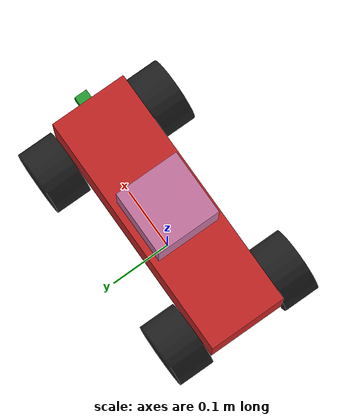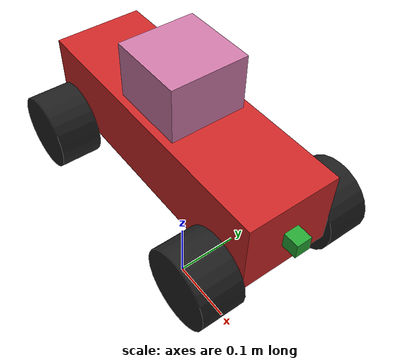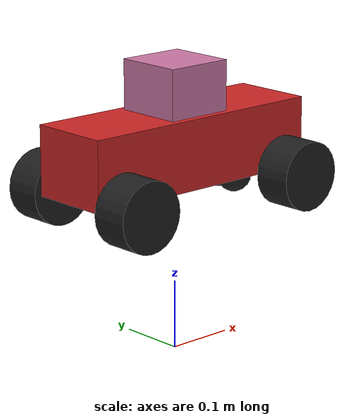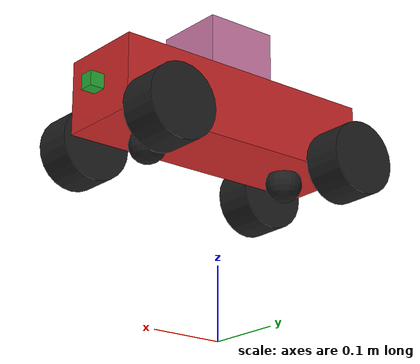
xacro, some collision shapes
<?xml version='1.0'?>

<robot name="myrobot" xmlns:xacro="http://www.ros.org/wiki/xacro">

  <xacro:property name="cameraSize" value="0.02"/>
  <xacro:property name="cameraMass" value="0.001"/>
  <xacro:property name="wheelMass" value="1.0"/>

  <xacro:include filename="$(find mybot_description)/urdf/mybot.gazebo" />
  <xacro:include filename="$(find mybot_description)/urdf/materials.xacro" />

      <!-- You can pass parameters in order to change the max/min
           horizontal angles of the velodyne sensors. These are interpreted
           in the velodyne_points gazebo file -->

<link name="base_link">
    <pose xyz="0 0 0" rpy="0 0 0" />

  <inertial>
    <mass value="10.0"/>
    <origin xyz="0 0 0.3" rpy="0 0 0"/>
    <inertia ixx="0.01632" ixy="0.0" ixz="0.0" iyy="0.01632" iyz="0.0" izz="0.01632"/>
  </inertial>

  <collision name='collision'>
    <origin xyz="0 0 0.3" rpy="0 0 0" />
    <geometry>
      <!--box size="0.382 0.12 0.072"/-->
      <box size="0.382 0.12 0.1"/>
    </geometry>
  </collision>

  <visual name='base_link_visual'>
    <origin xyz="0 0 0.3" rpy="0 0 0"/>
    <geometry>
      <!--box size="0.382 0.12 0.072"/-->
      <box size="0.382 0.12 0.1"/>
    </geometry>
  </visual>

</link>

<joint type="continuous" name="joint_R1">
  <parent link="base_link"/>
  <child link="R1"/>
  <origin xyz="0.1501 -0.0908 0.25" rpy="0 0 0"/>
  <axis xyz="0 1 0" rpy="0 0 0"/>
  <limit effort="10000" velocity="1000"/>
  <joint_properties damping="1.0" friction="1.0"/>
</joint>

<link name="R1">

  <collision name='collision'>
    <origin xyz="0 0 0" rpy="0 1.57079632679 1.57079632679"/>
    <geometry>
      <cylinder radius="0.05" length="0.056"/>
    </geometry>
    <surface>
      <friction>
        <ode>
          <mu>1</mu>
          <mu2>1</mu2>
          <slip1>0.5</slip1>
          <slip2>0</slip2>
        </ode>
      </friction>
    </surface>
  </collision>

  <visual name='R1_visual'>
    <origin xyz="0 0 0" rpy="0 1.57079632679 1.57079632679"/>
    <geometry>
      <cylinder radius="0.05" length="0.056"/>
    </geometry>
  </visual>

  <inertial>
    <mass value="${wheelMass}"/>
    <origin xyz="0 0 0" rpy="0 1.57079632679 1.57079632679"/>
    <inertia ixx="0.035453" ixy="0.0" ixz="0.0" iyy="0.035453" iyz="0.0" izz="0.06272"/>
  </inertial>
</link>

  <transmission name="R1_joint_trans">
    <type>transmission_interface/SimpleTransmission</type>
    <joint name="joint_R1"/>
    <actuator name="R1_joint_motor">
      <hardwareInterface>EffortJointInterface</hardwareInterface>
      <mechanicalReduction>1</mechanicalReduction>
    </actuator>
  </transmission>

<joint type="continuous" name="joint_R2">
  <parent link="base_link"/>
  <child link="R2"/>
  <origin xyz="-0.1501 -0.0908 0.25" rpy="0 0 0"/>
  <axis xyz="0 1 0" rpy="0 0 0"/>
  <limit effort="10000" velocity="1000"/>
  <joint_properties damping="1.0" friction="1.0"/>
</joint>

<link name="R2">
  <collision name='collision'>
    <origin xyz="0 0 0" rpy="0 1.57079632679 1.57079632679"/>
    <geometry>
      <cylinder radius="0.05" length="0.056"/>
    </geometry>
    <surface>
      <friction>
        <ode>
          <mu>1</mu>
          <mu2>1</mu2>
          <slip1>0.5</slip1>
          <slip2>0</slip2>
        </ode>
      </friction>
    </surface>
  </collision>

  <visual name='R2_visual'>
    <origin xyz="0 0 0" rpy="0 1.57079632679 1.57079632679"/>
    <geometry>
      <cylinder radius="0.05" length="0.056"/>
    </geometry>
  </visual>

  <inertial>
    <origin xyz="0 0 0" rpy="0 1.57079632679 1.57079632679"/>
    <mass value="${wheelMass}"/>
    <inertia ixx="0.035453" ixy="0.0" ixz="0.0" iyy="0.035453" iyz="0.0" izz="0.06272"/>
  </inertial>
</link>

  <transmission name="R2_joint_trans">
    <type>transmission_interface/SimpleTransmission</type>
    <joint name="joint_R2"/>
    <actuator name="R2_joint_motor">
      <hardwareInterface>EffortJointInterface</hardwareInterface>
      <mechanicalReduction>1</mechanicalReduction>
    </actuator>
  </transmission>

<joint name="joint_L1" type="continuous">
  <parent link="base_link"/>
  <child link="L1"/>
  <origin xyz="0.1501 0.0908 0.25" rpy="0 0 0"/>
  <axis xyz="0 1 0"/>
  <limit effort="10000" velocity="1000"/>
  <joint_properties damping="1.0" friction="1.0"/>
</joint>

<link name="L1">
  <collision name='collision'>
    <origin xyz="0 0 0" rpy="0 1.57079632679 1.57079632679"/>
    <geometry>
      <cylinder radius="0.05" length="0.056"/>
    </geometry>
    <surface>
      <friction>
        <ode>
          <mu>1</mu>
          <mu2>1</mu2>
          <slip1>0.5</slip1>
          <slip2>0</slip2>
        </ode>
      </friction>
    </surface>
  </collision>

  <visual name='L1_visual'>
    <origin xyz="0 0 0" rpy="0 1.57079632679 1.57079632679"/>
    <geometry>
      <cylinder radius="0.05" length="0.056"/>
    </geometry>
  </visual>

  <inertial>
    <origin xyz="0 0 0" rpy="0 1.57079632679 1.57079632679"/>
    <mass value="${wheelMass}"/>
    <inertia ixx="0.035453" ixy="0.0" ixz="0.0" iyy="0.035453" iyz="0.0" izz="0.06272"/>
    </inertial>
</link>

  <transmission name="L1_joint_trans">
    <type>transmission_interface/SimpleTransmission</type>
    <joint name="joint_L1"/>
    <actuator name="L1_joint_motor">
      <hardwareInterface>EffortJointInterface</hardwareInterface>
      <mechanicalReduction>1</mechanicalReduction>
    </actuator>
  </transmission>

<joint name="joint_L2" type="continuous">
  <parent link="base_link"/>
  <child link="L2"/>
  <origin xyz="-0.1501 0.0908 0.25" rpy="0 0 0" />
  <axis xyz="0 1 0" rpy="0 0 0"/>
  <limit effort="10000" velocity="1000"/>
  <joint_properties damping="1.0" fiction="1.0"/>
</joint>

<link name="L2">
  <collision name='collision'>
    <origin xyz="0 0 0" rpy="0 1.57079632679 1.57079632679"/>
    <geometry>
      <cylinder radius="0.05" length="0.056"/>
    </geometry>
    <surface>
      <friction>
        <ode>
          <mu>1</mu>
          <mu2>1</mu2>
          <slip1>0.5</slip1>
          <slip2>0</slip2>
        </ode>
      </friction>
    </surface>
  </collision>

  <visual name='L2_visual'>
    <origin xyz="0 0 0" rpy="0 1.57079632679 1.57079632679"/>
    <geometry>
      <cylinder radius="0.05" length="0.056"/>
    </geometry>
  </visual>

  <inertial>
    <origin xyz="0 0 0" rpy="0 1.57079632679 1.57079632679"/>
    <mass value="${wheelMass}"/>
    <inertia ixx="0.035453" ixy="0.0" ixz="0.0" iyy="0.035453" iyz="0.0" izz="0.06272"/>
  </inertial>
</link>

  <transmission name="L2_joint_trans">
    <type>transmission_interface/SimpleTransmission</type>
    <joint name="joint_L2"/>
    <actuator name="L2_joint_motor">
      <hardwareInterface>EffortJointInterface</hardwareInterface>
      <mechanicalReduction>1</mechanicalReduction>
    </actuator>
  </transmission>

  <link name="camera">
    <collision>
      <origin xyz="0 0 0" rpy="0 0 0"/>
      <geometry>
        <box size="${cameraSize} ${cameraSize} ${cameraSize}"/>
      </geometry>
    </collision>

    <visual>
      <origin xyz="0 0 0" rpy="0 0 0"/>
      <geometry>
        <box size="${cameraSize} ${cameraSize} ${cameraSize}"/>
      </geometry>
      <material name="green"/>
    </visual>

    <inertial>
      <mass value="${cameraMass}" />
      <origin xyz="0 0 0" rpy="0 0 0"/>
      <box_inertia m="${cameraMass}" x="${cameraSize}" y="${cameraSize}" z="${cameraSize}" />
      <inertia ixx="1e-6" ixy="0" ixz="0" iyy="1e-6" iyz="0" izz="1e-6" />
    </inertial>
  </link>

  <joint name="camera_joint" type="fixed">
    <axis xyz="0 1 0" />
    <!--origin xyz="0.2015 0 0.05" rpy="0 0 0"/-->
    <origin xyz="0.2015 0 0.3" rpy="0 0 0"/>
    <parent link="base_link"/>
    <child link="camera"/>
  </joint>

  <joint name="hokuyo_joint" type="fixed">
    <axis xyz="0 1 0" />
    <origin xyz="0.0 0 0.372" rpy="0 0 0"/>
    <parent link="base_link"/>
    <child link="hokuyo"/>
  </joint>

  <!-- Hokuyo Laser -->
  <link name="hokuyo">
    <collision>
      <origin xyz="0 0 0" rpy="0 0 0"/>
      <geometry>
    <box size="0.1 0.1 0.1"/>
      </geometry>
    </collision>

    <visual>
      <origin xyz="0 0 0" rpy="0 0 0"/>
      <geometry>
        <mesh filename="package://mybot_description/meshes/hokuyo.dae"/>
      </geometry>
    </visual>

    <inertial>
      <mass value="0.0001" />
      <origin xyz="0 0 0" rpy="0 1.5707 0"/>
      <inertia ixx="0.0001" ixy="0" ixz="0" iyy="0.0001" iyz="0" izz="0.0001" />
    </inertial>
  </link>

  <link name="caster_front_link">
    <visual>
      <origin rpy="1.57079632679 0 0" xyz="0 0.02 0"/>
      <geometry>
        <sphere radius="0.025"/>
      </geometry>
      <material name="Black"/>
    </visual>
    <collision>
      <geometry>
        <sphere radius="0.025"/>
      </geometry>
      <origin rpy="1.57079632679 0 0" xyz="0 0.02 0"/>
    </collision>
    <inertial>
      <mass value="0.5"/>
      <origin xyz="0 0 0"/>
      <inertia ixx="0.001" ixy="0.0" ixz="0.0" iyy="0.001" iyz="0.0" izz="0.001"/>
    </inertial>
  </link>
  <joint name="caster_front_joint" type="fixed">
    <parent link="base_link"/>
    <child link="caster_front_link"/>
    <origin rpy="-1.57079632679 0 0" xyz="0.115 0.0 0.257"/>
  </joint>
  <gazebo reference="caster_front_link">
    <turnGravityOff>false</turnGravityOff>
  </gazebo>

  <link name="caster_back_link">
    <visual>
      <origin rpy="1.57079632679 0 0" xyz="0.02 0.02 0 "/>
      <geometry>
        <sphere radius="0.025"/>
      </geometry>
      <material name="Black"/>
    </visual>
    <collision>
      <geometry>
        <sphere radius="0.025"/>
      </geometry>
      <origin rpy="1.57079632679 0 0" xyz="0.02 0.02 0 "/>
    </collision>
    <inertial>
      <mass value="0.5"/>
      <origin xyz="0 0 0"/>
      <inertia ixx="0.001" ixy="0.0" ixz="0.0" iyy="0.001" iyz="0.0" izz="0.001"/>
    </inertial>
  </link>
  <joint name="caster_back_joint" type="fixed">
    <parent link="base_link"/>
    <child link="caster_back_link"/>
    <origin rpy="-1.57079632679 0 0" xyz="-0.135 0.0 0.257"/>
  </joint>
  <gazebo reference="caster_back_link">
    <turnGravityOff>false</turnGravityOff>
  </gazebo>

</robot>
